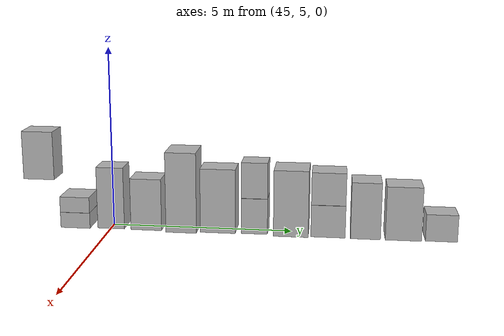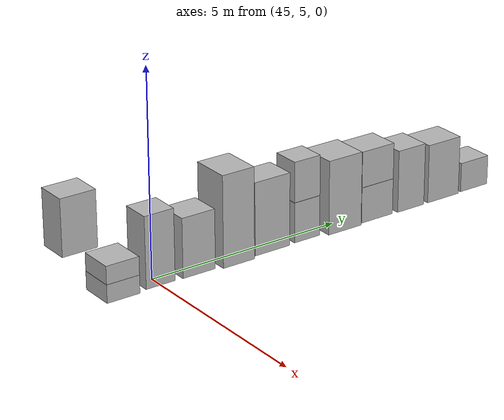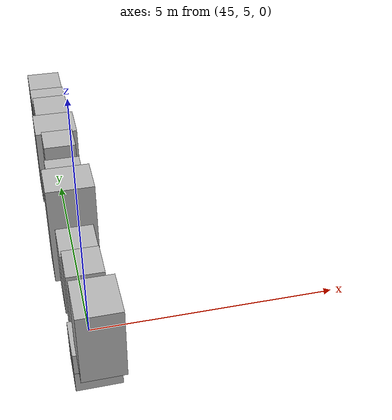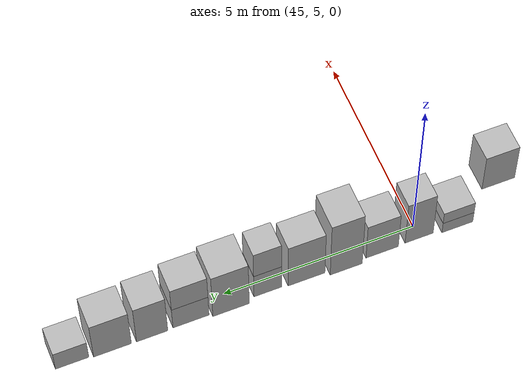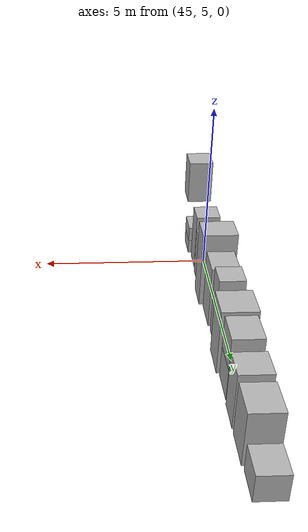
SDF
<sdf version="1.5">
 <world name="default">
  <model name="ground_plane">
   <static>true</static>
   <link name="link">
    <collision name="collision">
     <geometry><plane><normal>0 0 1</normal><size>250 250</size></plane></geometry>
     <surface><friction><ode><mu>1</mu><mu2>1</mu2></ode></friction></surface>
    </collision>
    <visual name="grass">
     <cast_shadows>false</cast_shadows>
     <geometry><mesh><uri>file://grass_plane/meshes/grass_plane.dae</uri></mesh></geometry>
    </visual>
   </link>
  </model>
  <model name="Cardboard_box_top_573">
   <link name="link_0">
    <pose>45 3 1.35734145915 0 0 0</pose>
    <inertial>
     <mass>1</mass>
     <inertia>
      <ixx>0.166667</ixx>
      <ixy>0</ixy>
      <ixz>0</ixz>
      <iyy>0.166667</iyy>
      <iyz>0</iyz>
      <izz>0.166667</izz>
     </inertia>
    </inertial>
    <collision name="collision">
     <geometry>
      <mesh>
       <uri>model://Cardboard_box/meshes/cardboard_box.dae</uri>
       <scale>1.87615200814 2.19194507329 3.39335364789</scale>
      </mesh>
     </geometry>
    </collision>
    <visual name="visual">
     <geometry>
      <mesh>
       <uri>model://Cardboard_box/meshes/cardboard_box.dae</uri>
       <scale>1.87615200814 2.19194507329 3.39335364789</scale>
      </mesh>
     </geometry>
    </visual>
   </link>
   <static>1</static>
  </model>
  <model name="Cardboard_box_574">
   <link name="link_0">
    <pose>45 4 0 0 0 0</pose>
    <inertial>
     <mass>1</mass>
     <inertia>
      <ixx>0.166667</ixx>
      <ixy>0</ixy>
      <ixz>0</ixz>
      <iyy>0.166667</iyy>
      <iyz>0</iyz>
      <izz>0.166667</izz>
     </inertia>
    </inertial>
    <collision name="collision">
     <geometry>
      <mesh>
       <uri>model://Cardboard_box/meshes/cardboard_box.dae</uri>
       <scale>2.14892323215 2.10510019186 1.11144033528</scale>
      </mesh>
     </geometry>
    </collision>
    <visual name="visual">
     <geometry>
      <mesh>
       <uri>model://Cardboard_box/meshes/cardboard_box.dae</uri>
       <scale>2.14892323215 2.10510019186 1.11144033528</scale>
      </mesh>
     </geometry>
    </visual>
   </link>
   <static>1</static>
  </model>
  <model name="Cardboard_box_top_574">
   <link name="link_0">
    <pose>45 4 0.444576134111 0 0 0</pose>
    <inertial>
     <mass>1</mass>
     <inertia>
      <ixx>0.166667</ixx>
      <ixy>0</ixy>
      <ixz>0</ixz>
      <iyy>0.166667</iyy>
      <iyz>0</iyz>
      <izz>0.166667</izz>
     </inertia>
    </inertial>
    <collision name="collision">
     <geometry>
      <mesh>
       <uri>model://Cardboard_box/meshes/cardboard_box.dae</uri>
       <scale>2.14892323215 2.10510019186 1.11144033528</scale>
      </mesh>
     </geometry>
    </collision>
    <visual name="visual">
     <geometry>
      <mesh>
       <uri>model://Cardboard_box/meshes/cardboard_box.dae</uri>
       <scale>2.14892323215 2.10510019186 1.11144033528</scale>
      </mesh>
     </geometry>
    </visual>
   </link>
   <static>1</static>
  </model>
  <model name="Cardboard_box_575">
   <link name="link_0">
    <pose>45 5 0 0 0 0</pose>
    <inertial>
     <mass>1</mass>
     <inertia>
      <ixx>0.166667</ixx>
      <ixy>0</ixy>
      <ixz>0</ixz>
      <iyy>0.166667</iyy>
      <iyz>0</iyz>
      <izz>0.166667</izz>
     </inertia>
    </inertial>
    <collision name="collision">
     <geometry>
      <mesh>
       <uri>model://Cardboard_box/meshes/cardboard_box.dae</uri>
       <scale>1.78546605394 1.90320134998 4.39310483238</scale>
      </mesh>
     </geometry>
    </collision>
    <visual name="visual">
     <geometry>
      <mesh>
       <uri>model://Cardboard_box/meshes/cardboard_box.dae</uri>
       <scale>1.78546605394 1.90320134998 4.39310483238</scale>
      </mesh>
     </geometry>
    </visual>
   </link>
   <static>1</static>
  </model>
  <model name="Cardboard_box_576">
   <link name="link_0">
    <pose>45 6 0 0 0 0</pose>
    <inertial>
     <mass>1</mass>
     <inertia>
      <ixx>0.166667</ixx>
      <ixy>0</ixy>
      <ixz>0</ixz>
      <iyy>0.166667</iyy>
      <iyz>0</iyz>
      <izz>0.166667</izz>
     </inertia>
    </inertial>
    <collision name="collision">
     <geometry>
      <mesh>
       <uri>model://Cardboard_box/meshes/cardboard_box.dae</uri>
       <scale>1.91029390306 2.17140976729 3.66537155068</scale>
      </mesh>
     </geometry>
    </collision>
    <visual name="visual">
     <geometry>
      <mesh>
       <uri>model://Cardboard_box/meshes/cardboard_box.dae</uri>
       <scale>1.91029390306 2.17140976729 3.66537155068</scale>
      </mesh>
     </geometry>
    </visual>
   </link>
   <static>1</static>
  </model>
  <model name="Cardboard_box_577">
   <link name="link_0">
    <pose>45 7 0 0 0 0</pose>
    <inertial>
     <mass>1</mass>
     <inertia>
      <ixx>0.166667</ixx>
      <ixy>0</ixy>
      <ixz>0</ixz>
      <iyy>0.166667</iyy>
      <iyz>0</iyz>
      <izz>0.166667</izz>
     </inertia>
    </inertial>
    <collision name="collision">
     <geometry>
      <mesh>
       <uri>model://Cardboard_box/meshes/cardboard_box.dae</uri>
       <scale>2.4425926585 2.13242563787 5.65864653557</scale>
      </mesh>
     </geometry>
    </collision>
    <visual name="visual">
     <geometry>
      <mesh>
       <uri>model://Cardboard_box/meshes/cardboard_box.dae</uri>
       <scale>2.4425926585 2.13242563787 5.65864653557</scale>
      </mesh>
     </geometry>
    </visual>
   </link>
   <static>1</static>
  </model>
  <model name="Cardboard_box_578">
   <link name="link_0">
    <pose>45 8 0 0 0 0</pose>
    <inertial>
     <mass>1</mass>
     <inertia>
      <ixx>0.166667</ixx>
      <ixy>0</ixy>
      <ixz>0</ixz>
      <iyy>0.166667</iyy>
      <iyz>0</iyz>
      <izz>0.166667</izz>
     </inertia>
    </inertial>
    <collision name="collision">
     <geometry>
      <mesh>
       <uri>model://Cardboard_box/meshes/cardboard_box.dae</uri>
       <scale>1.90990426082 2.43413813879 4.52580000574</scale>
      </mesh>
     </geometry>
    </collision>
    <visual name="visual">
     <geometry>
      <mesh>
       <uri>model://Cardboard_box/meshes/cardboard_box.dae</uri>
       <scale>1.90990426082 2.43413813879 4.52580000574</scale>
      </mesh>
     </geometry>
    </visual>
   </link>
   <static>1</static>
  </model>
  <model name="Cardboard_box_579">
   <link name="link_0">
    <pose>45 9 0 0 0 0</pose>
    <inertial>
     <mass>1</mass>
     <inertia>
      <ixx>0.166667</ixx>
      <ixy>0</ixy>
      <ixz>0</ixz>
      <iyy>0.166667</iyy>
      <iyz>0</iyz>
      <izz>0.166667</izz>
     </inertia>
    </inertial>
    <collision name="collision">
     <geometry>
      <mesh>
       <uri>model://Cardboard_box/meshes/cardboard_box.dae</uri>
       <scale>1.73446245961 1.8031130495 2.50535760326</scale>
      </mesh>
     </geometry>
    </collision>
    <visual name="visual">
     <geometry>
      <mesh>
       <uri>model://Cardboard_box/meshes/cardboard_box.dae</uri>
       <scale>1.73446245961 1.8031130495 2.50535760326</scale>
      </mesh>
     </geometry>
    </visual>
   </link>
   <static>1</static>
  </model>
  <model name="Cardboard_box_top_579">
   <link name="link_0">
    <pose>45 9 1.0021430413 0 0 0</pose>
    <inertial>
     <mass>1</mass>
     <inertia>
      <ixx>0.166667</ixx>
      <ixy>0</ixy>
      <ixz>0</ixz>
      <iyy>0.166667</iyy>
      <iyz>0</iyz>
      <izz>0.166667</izz>
     </inertia>
    </inertial>
    <collision name="collision">
     <geometry>
      <mesh>
       <uri>model://Cardboard_box/meshes/cardboard_box.dae</uri>
       <scale>1.73446245961 1.8031130495 2.50535760326</scale>
      </mesh>
     </geometry>
    </collision>
    <visual name="visual">
     <geometry>
      <mesh>
       <uri>model://Cardboard_box/meshes/cardboard_box.dae</uri>
       <scale>1.73446245961 1.8031130495 2.50535760326</scale>
      </mesh>
     </geometry>
    </visual>
   </link>
   <static>1</static>
  </model>
  <model name="Cardboard_box_580">
   <link name="link_0">
    <pose>45 10 0 0 0 0</pose>
    <inertial>
     <mass>1</mass>
     <inertia>
      <ixx>0.166667</ixx>
      <ixy>0</ixy>
      <ixz>0</ixz>
      <iyy>0.166667</iyy>
      <iyz>0</iyz>
      <izz>0.166667</izz>
     </inertia>
    </inertial>
    <collision name="collision">
     <geometry>
      <mesh>
       <uri>model://Cardboard_box/meshes/cardboard_box.dae</uri>
       <scale>2.36613418581 2.36786212021 4.63308340288</scale>
      </mesh>
     </geometry>
    </collision>
    <visual name="visual">
     <geometry>
      <mesh>
       <uri>model://Cardboard_box/meshes/cardboard_box.dae</uri>
       <scale>2.36613418581 2.36786212021 4.63308340288</scale>
      </mesh>
     </geometry>
    </visual>
   </link>
   <static>1</static>
  </model>
  <model name="Cardboard_box_581">
   <link name="link_0">
    <pose>45 11 0 0 0 0</pose>
    <inertial>
     <mass>1</mass>
     <inertia>
      <ixx>0.166667</ixx>
      <ixy>0</ixy>
      <ixz>0</ixz>
      <iyy>0.166667</iyy>
      <iyz>0</iyz>
      <izz>0.166667</izz>
     </inertia>
    </inertial>
    <collision name="collision">
     <geometry>
      <mesh>
       <uri>model://Cardboard_box/meshes/cardboard_box.dae</uri>
       <scale>1.99583571166 2.32485665002 2.24808295394</scale>
      </mesh>
     </geometry>
    </collision>
    <visual name="visual">
     <geometry>
      <mesh>
       <uri>model://Cardboard_box/meshes/cardboard_box.dae</uri>
       <scale>1.99583571166 2.32485665002 2.24808295394</scale>
      </mesh>
     </geometry>
    </visual>
   </link>
   <static>1</static>
  </model>
  <model name="Cardboard_box_top_581">
   <link name="link_0">
    <pose>45 11 0.899233181576 0 0 0</pose>
    <inertial>
     <mass>1</mass>
     <inertia>
      <ixx>0.166667</ixx>
      <ixy>0</ixy>
      <ixz>0</ixz>
      <iyy>0.166667</iyy>
      <iyz>0</iyz>
      <izz>0.166667</izz>
     </inertia>
    </inertial>
    <collision name="collision">
     <geometry>
      <mesh>
       <uri>model://Cardboard_box/meshes/cardboard_box.dae</uri>
       <scale>1.99583571166 2.32485665002 2.24808295394</scale>
      </mesh>
     </geometry>
    </collision>
    <visual name="visual">
     <geometry>
      <mesh>
       <uri>model://Cardboard_box/meshes/cardboard_box.dae</uri>
       <scale>1.99583571166 2.32485665002 2.24808295394</scale>
      </mesh>
     </geometry>
    </visual>
   </link>
   <static>1</static>
  </model>
  <model name="Cardboard_box_582">
   <link name="link_0">
    <pose>45 12 0 0 0 0</pose>
    <inertial>
     <mass>1</mass>
     <inertia>
      <ixx>0.166667</ixx>
      <ixy>0</ixy>
      <ixz>0</ixz>
      <iyy>0.166667</iyy>
      <iyz>0</iyz>
      <izz>0.166667</izz>
     </inertia>
    </inertial>
    <collision name="collision">
     <geometry>
      <mesh>
       <uri>model://Cardboard_box/meshes/cardboard_box.dae</uri>
       <scale>2.11003622039 2.00034061736 3.92329298672</scale>
      </mesh>
     </geometry>
    </collision>
    <visual name="visual">
     <geometry>
      <mesh>
       <uri>model://Cardboard_box/meshes/cardboard_box.dae</uri>
       <scale>2.11003622039 2.00034061736 3.92329298672</scale>
      </mesh>
     </geometry>
    </visual>
   </link>
   <static>1</static>
  </model>
  <model name="Cardboard_box_583">
   <link name="link_0">
    <pose>45 13 0 0 0 0</pose>
    <inertial>
     <mass>1</mass>
     <inertia>
      <ixx>0.166667</ixx>
      <ixy>0</ixy>
      <ixz>0</ixz>
      <iyy>0.166667</iyy>
      <iyz>0</iyz>
      <izz>0.166667</izz>
     </inertia>
    </inertial>
    <collision name="collision">
     <geometry>
      <mesh>
       <uri>model://Cardboard_box/meshes/cardboard_box.dae</uri>
       <scale>2.08092391783 2.39508411235 3.71113572942</scale>
      </mesh>
     </geometry>
    </collision>
    <visual name="visual">
     <geometry>
      <mesh>
       <uri>model://Cardboard_box/meshes/cardboard_box.dae</uri>
       <scale>2.08092391783 2.39508411235 3.71113572942</scale>
      </mesh>
     </geometry>
    </visual>
   </link>
   <static>1</static>
  </model>
  <model name="Cardboard_box_584">
   <link name="link_0">
    <pose>45 14 0 0 0 0</pose>
    <inertial>
     <mass>1</mass>
     <inertia>
      <ixx>0.166667</ixx>
      <ixy>0</ixy>
      <ixz>0</ixz>
      <iyy>0.166667</iyy>
      <iyz>0</iyz>
      <izz>0.166667</izz>
     </inertia>
    </inertial>
    <collision name="collision">
     <geometry>
      <mesh>
       <uri>model://Cardboard_box/meshes/cardboard_box.dae</uri>
       <scale>1.88428107874 2.1049856559 1.85763268801</scale>
      </mesh>
     </geometry>
    </collision>
    <visual name="visual">
     <geometry>
      <mesh>
       <uri>model://Cardboard_box/meshes/cardboard_box.dae</uri>
       <scale>1.88428107874 2.1049856559 1.85763268801</scale>
      </mesh>
     </geometry>
    </visual>
   </link>
   <static>1</static>
  </model>
 </world>
</sdf>
